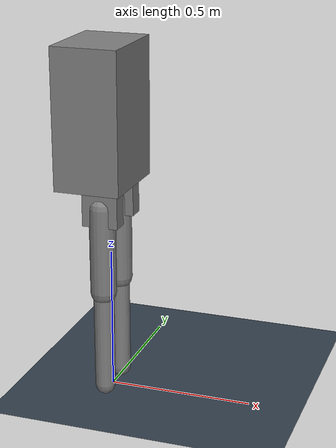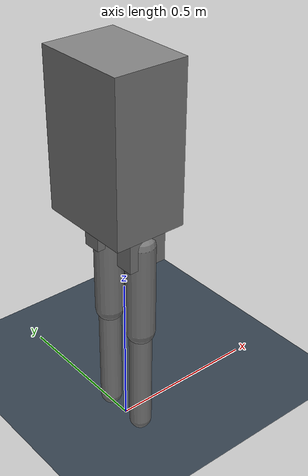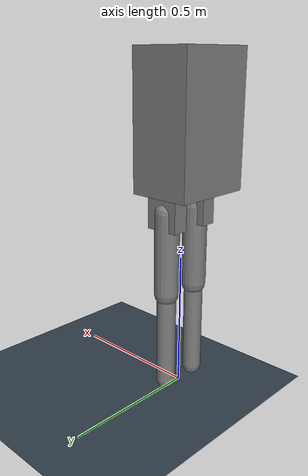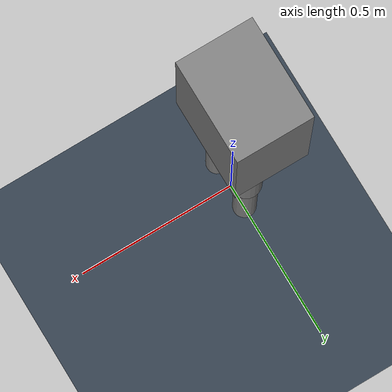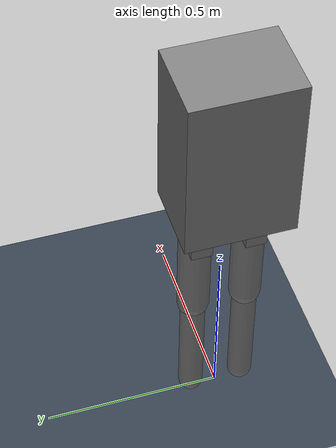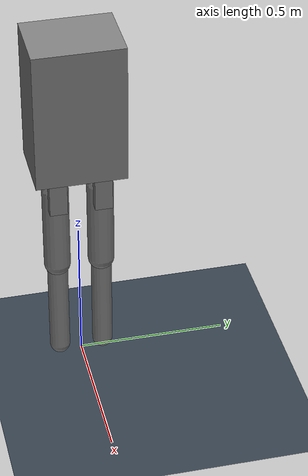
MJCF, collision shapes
<mujoco model="engineai_sa01">
  <default>
    <!-- Visual-only geoms: no collision, group 1 for rendering -->
    <default class="visual">
      <geom contype="0" conaffinity="0" group="1" density="0"/>
    </default>
    <!-- Collision geoms: simple primitives with stable contact parameters -->
    <default class="collision">
      <geom group="2" rgba="0.5 0.5 0.5 0.3"
            friction="1.0 0.005 0.0001"
            solimp="0.95 0.99 0.001"
            solref="0.004 1.0"/>
    </default>
  </default>
  <compiler angle="radian" meshdir="../meshes"/>
  <option timestep="0.001" gravity="0 0 -9.81"/>

  <statistic center="0 0 0.5" extent="1.0"/>
  <visual>
    <headlight diffuse="0.6 0.6 0.6" ambient="0.1 0.1 0.1" specular="0.9 0.9 0.9"/>
    <rgba haze="0.15 0.25 0.35 1"/>
    <global azimuth="-140" elevation="-20"/>
  </visual>

  <asset>
    <texture type="skybox" builtin="gradient" rgb2="0.835 0.761 0.612" rgb1="0.639 0.722 0.8" width="512" height="512"/>
    <texture type="2d" name="groundplane" builtin="checker" mark="random"
             rgb1="0.25 0.3 0.35" rgb2="0.15 0.2 0.25"
             markrgb="0.6 0.7 0.8"
             width="512" height="512"/>
    <material name="groundplane" texture="groundplane" texuniform="true" texrepeat="2 2" reflectance="0.05"/>
    <mesh name="base_link" content_type="model/stl" file="Base_link.STL"/>
    <mesh name="left_leg_link_01" content_type="model/stl" file="LeftLeg_Link_01.STL"/>
    <mesh name="left_leg_link_02" content_type="model/stl" file="LeftLeg_Link_02.STL"/>
    <mesh name="left_leg_link_03" content_type="model/stl" file="LeftLeg_Link_03.STL"/>
    <mesh name="left_leg_link_04" content_type="model/stl" file="LeftLeg_Link_04.STL"/>
    <mesh name="left_leg_link_05" content_type="model/stl" file="LeftLeg_Link_05.STL"/>
    <mesh name="left_leg_link_06" content_type="model/stl" file="LeftLeg_Link_06.STL"/>
    <mesh name="right_leg_link_01" content_type="model/stl" file="RightLeg_Link_01.STL"/>
    <mesh name="right_leg_link_02" content_type="model/stl" file="RightLeg_Link_02.STL"/>
    <mesh name="right_leg_link_03" content_type="model/stl" file="RightLeg_Link_03.STL"/>
    <mesh name="right_leg_link_04" content_type="model/stl" file="RightLeg_Link_04.STL"/>
    <mesh name="right_leg_link_05" content_type="model/stl" file="RightLeg_Link_05.STL"/>
    <mesh name="right_leg_link_06" content_type="model/stl" file="RightLeg_Link_06.STL"/>
  </asset>

  <worldbody>
    <light pos="1 0 3.5" dir="0 0 -1" directional="true"/>
    <geom name="floor" size="10 10 0.05" type="plane" material="groundplane"
          friction="1.0 0.005 0.0001"
          solimp="0.95 0.99 0.001"
          solref="0.004 1.0"/>

    <body name="base_link" pos="0 0 0.8135">
      <freejoint name="root"/>
      <inertial pos="-0.030427 0.00055533 0.10697" mass="10.176"
                fullinertia="0.24707543 0.21999950689 0.09662582243 7.14263e-05 -0.017967096 -0.00116322262"/>
      <geom class="visual" type="mesh" rgba="0.898039 0.917647 0.929412 1" mesh="base_link"/>
      <geom class="collision" type="box" size="0.114 0.151 0.2415" pos="-0.026 0 0.1765"/>
      <site name="imu" size="0.01" pos="0.0 0 0.0"/>

      <!-- Left leg -->
      <body name="leg_l1_link" pos="0 0.075 0">
        <inertial pos="0.0003501 0.00043844 -0.0020201" mass="1.6592"
                  fullinertia="0.00170970094 0.00222453198 0.00296249862 3.39099e-06 -3.64314e-06 -1.8428e-05"/>
        <joint name="leg_l1_joint" pos="0 0 0" axis="1 0 0" range="-0.523 0.523" actuatorfrcrange="-140 140" armature="0.042"/>
        <geom class="visual" type="mesh" mesh="left_leg_link_01"/>
        <!-- Hip roll housing, fitted to the LeftLeg_Link_01 mesh AABB. -->
        <geom class="collision" type="box" size="0.066 0.0575 0.0304" pos="0.0016 0 -0.0006"/>
        <body name="leg_l2_link" pos="0 0 0">
          <inertial pos="0.00038352 0.0010044 -0.12214" mass="1.8008"
                    fullinertia="0.0028514924 0.00367928378 0.00191736965 -8.11841e-06 8.1779e-07 1.485978e-05"/>
          <joint name="leg_l2_joint" pos="0 0 0" axis="0 0 1" range="-0.3 0.3" actuatorfrcrange="-140 140" armature="0.042"/>
          <geom class="visual" type="mesh" mesh="left_leg_link_02"/>
          <geom class="collision" type="box" size="0.0625 0.0295 0.0802" pos="0.0016 0 -0.1112"/>
          <body name="leg_l3_link" pos="0 0 -0.1311">
            <inertial pos="-0.0017654 0.0012877 -0.13954" mass="3.9299"
                      fullinertia="0.03203144433 0.0356106115 0.01016719156 3.937845e-05 0.00141442438 -0.00080953754"/>
            <joint name="leg_l3_joint" pos="0 0 0" axis="0 1 0" range="-1.204 1.204" actuatorfrcrange="-140 140" armature="0.042"/>
            <geom class="visual" type="mesh" mesh="left_leg_link_03"/>
            <geom class="collision" type="capsule" size="0.045" fromto="0 0 0 0 0 -0.30"/>
            <body name="leg_l4_link" pos="0 5.9998e-05 -0.3">
              <inertial pos="-0.00751 -0.00041 -0.16322" mass="2.7251"
                        fullinertia="0.03032295461 0.03234908064 0.00389340359 -7.371616e-05 -0.00028406531 0.00021740427"/>
              <joint name="leg_l4_joint" pos="0 0 0" axis="0 1 0" range="0.0 2.268" actuatorfrcrange="-140 140" armature="0.042"/>
              <geom class="visual" type="mesh" mesh="left_leg_link_04"/>
              <geom class="collision" type="capsule" size="0.035" fromto="0 0 -0.02 0 0 -0.35"/>
              <body name="leg_l5_link" pos="0 7.0122e-05 -0.37">
                <inertial pos="-2.5946e-10 -5e-05 -3.4499e-09" mass="0.16135"
                          fullinertia="3.0975e-05 3.1274e-05 3.1681e-05 0 0 0"/>
                <joint name="leg_l5_joint" pos="0 0 0" axis="0 1 0" range="-1.0 0.6" actuatorfrcrange="-24 24" armature="0.0035"/>
                <geom class="visual" type="mesh" mesh="left_leg_link_05"/>
                <!-- Ankle pitch link: a small sphere over the LeftLeg_Link_05 mesh. -->
                <geom class="collision" type="sphere" size="0.0175" pos="0.0016 0 0.0021"/>
                <body name="leg_l6_link" pos="0 0 0">
                  <inertial pos="0.030366 0.0019502 -0.03549" mass="1.1926"
                            fullinertia="0.00105334189 0.00606712875 0.00646061141 0 0 0"/>
                  <joint name="leg_l6_joint" pos="0 0 0" axis="1 0 0" range="-0.6 0.6" actuatorfrcrange="-24 24" armature="0.0035"/>
                  <geom class="visual" type="mesh" mesh="left_leg_link_06"/>
                  <geom class="collision" type="sphere" size="0.010" pos="-0.065 0.045 -0.045"/>
                  <geom class="collision" type="sphere" size="0.010" pos="-0.065 -0.035 -0.045"/>
                  <geom class="collision" type="sphere" size="0.010" pos="0.185 0.045 -0.045"/>
                  <geom class="collision" type="sphere" size="0.010" pos="0.185 -0.035 -0.045"/>
                </body>
              </body>
            </body>
          </body>
        </body>
      </body>

      <!-- Right leg -->
      <body name="leg_r1_link" pos="0 -0.075 0">
        <inertial pos="0.0003501 0.00043844 -0.0020201" mass="1.6592"
                  fullinertia="0.00170970094 0.00222453198 0.00296249862 3.39099e-06 -3.64314e-06 -1.8428e-05"/>
        <joint name="leg_r1_joint" pos="0 0 0" axis="1 0 0" range="-0.523 0.523" actuatorfrcrange="-140 140" armature="0.042"/>
        <geom class="visual" type="mesh" mesh="right_leg_link_01"/>
        <!-- Hip roll housing, fitted to the LeftLeg_Link_01 mesh AABB. -->
        <geom class="collision" type="box" size="0.066 0.0575 0.0304" pos="0.0016 0 -0.0006"/>
        <body name="leg_r2_link" pos="0 0 0">
          <inertial pos="-0.00038352 -0.0010044 -0.12214" mass="1.8008"
                    fullinertia="0.0028514924 0.00367928378 0.00191736965 -8.11841e-06 -8.1779e-07 -1.485978e-05"/>
          <joint name="leg_r2_joint" pos="0 0 0" axis="0 0 1" range="-0.3 0.3" actuatorfrcrange="-140 140" armature="0.042"/>
          <geom class="visual" type="mesh" mesh="right_leg_link_02"/>
          <geom class="collision" type="box" size="0.0625 0.0295 0.0802" pos="0.0016 0 -0.1112"/>
          <body name="leg_r3_link" pos="0 0 -0.1311">
            <inertial pos="-0.0017403 -0.0012919 -0.13954" mass="3.9294"
                      fullinertia="0.03202203311 0.03559852831 0.01016409159 -3.371707e-05 0.00139789064 0.00081210058"/>
            <joint name="leg_r3_joint" pos="0 0 0" axis="0 1 0" range="-1.204 1.204" actuatorfrcrange="-140 140" armature="0.042"/>
            <geom class="visual" type="mesh" mesh="right_leg_link_03"/>
            <geom class="collision" type="capsule" size="0.045" fromto="0 0 0 0 0 -0.30"/>
            <body name="leg_r4_link" pos="0 -5.9998e-05 -0.3">
              <inertial pos="-0.00751 0.00047274 -0.16321" mass="2.72497"
                        fullinertia="0.03032110864 0.0323473304 0.00389339565 7.373941e-05 -0.00028430637 -0.00021746443"/>
              <joint name="leg_r4_joint" pos="0 0 0" axis="0 1 0" range="0.0 2.268" actuatorfrcrange="-140 140" armature="0.042"/>
              <geom class="visual" type="mesh" mesh="right_leg_link_04"/>
              <geom class="collision" type="capsule" size="0.035" fromto="0 0 -0.02 0 0 -0.35"/>
              <body name="leg_r5_link" pos="0 -7.0122e-05 -0.37">
                <inertial pos="2.5946e-10 5e-05 -3.4499e-09" mass="0.16135"
                          fullinertia="3.0975e-05 3.1274e-05 3.1274e-05 0 0 0"/>
                <joint name="leg_r5_joint" pos="0 0 0" axis="0 1 0" range="-1.0 0.6" actuatorfrcrange="-24 24" armature="0.0035"/>
                <geom class="visual" type="mesh" mesh="right_leg_link_05"/>
                <!-- Ankle pitch link: a small sphere over the LeftLeg_Link_05 mesh. -->
                <geom class="collision" type="sphere" size="0.0175" pos="0.0016 0 0.0021"/>
                <body name="leg_r6_link" pos="0 0 0">
                  <inertial pos="0.030366 -0.0019504 -0.03549" mass="1.1926"
                            fullinertia="0.00105336111 0.00606728572 0.00646075577 0 0 0"/>
                  <joint name="leg_r6_joint" pos="0 0 0" axis="1 0 0" range="-0.6 0.6" actuatorfrcrange="-24 24" armature="0.0035"/>
                  <geom class="visual" type="mesh" mesh="right_leg_link_06"/>
                  <!-- Mirrored: the sole is offset 0.005 outboard, so the inner corners sit at y = +0.035. -->
                  <geom class="collision" type="sphere" size="0.010" pos="-0.065 0.035 -0.045"/>
                  <geom class="collision" type="sphere" size="0.010" pos="-0.065 -0.045 -0.045"/>
                  <geom class="collision" type="sphere" size="0.010" pos="0.185 0.035 -0.045"/>
                  <geom class="collision" type="sphere" size="0.010" pos="0.185 -0.045 -0.045"/>
                </body>
              </body>
            </body>
          </body>
        </body>
      </body>
    </body>
  </worldbody>

  <contact>
    <exclude body1="base_link" body2="leg_l2_link"/>
    <exclude body1="base_link" body2="leg_r2_link"/>
  </contact>

  <actuator>
    <!-- Left leg -->
    <motor name="leg_l1_joint" joint="leg_l1_joint"/>
    <motor name="leg_l2_joint" joint="leg_l2_joint"/>
    <motor name="leg_l3_joint" joint="leg_l3_joint"/>
    <motor name="leg_l4_joint" joint="leg_l4_joint"/>
    <motor name="leg_l5_joint" joint="leg_l5_joint"/>
    <motor name="leg_l6_joint" joint="leg_l6_joint"/>
    <!-- Right leg -->
    <motor name="leg_r1_joint" joint="leg_r1_joint"/>
    <motor name="leg_r2_joint" joint="leg_r2_joint"/>
    <motor name="leg_r3_joint" joint="leg_r3_joint"/>
    <motor name="leg_r4_joint" joint="leg_r4_joint"/>
    <motor name="leg_r5_joint" joint="leg_r5_joint"/>
    <motor name="leg_r6_joint" joint="leg_r6_joint"/>
  </actuator>
  <equality>
    <weld name="gantry" body1="world" body2="base_link" relpose="0 0 1 1 0 0 0" active="false"/>
  </equality>
</mujoco>
